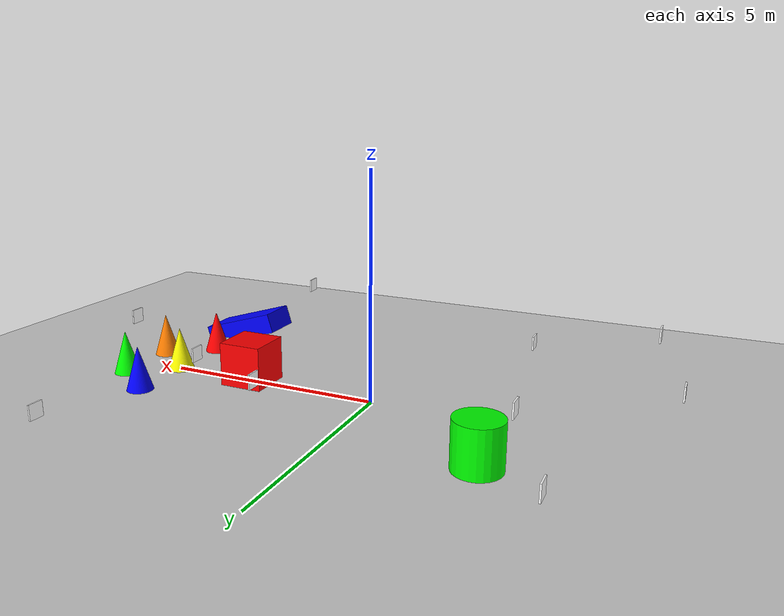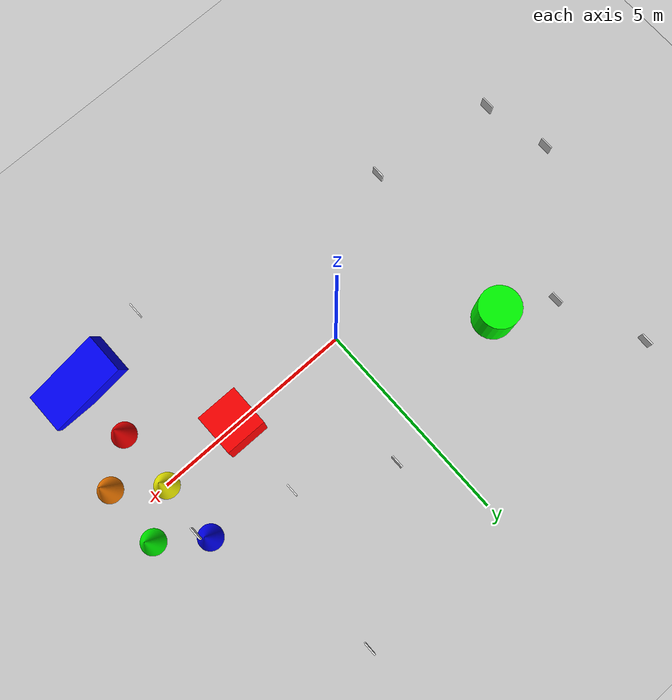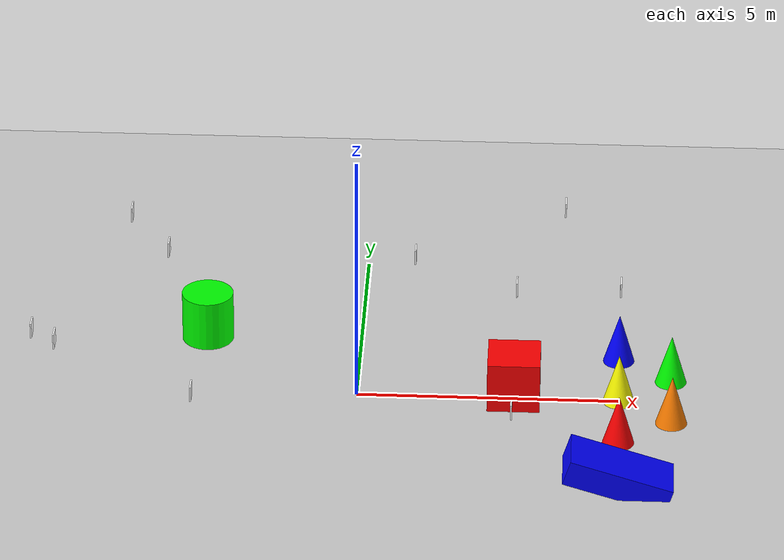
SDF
<?xml version="1.0"?>
<sdf version="1.8">
    <world name="my_robot_world">

        <!-- Physics Engine -->
        <physics name="1ms" type="ode">
            <max_step_size>0.001</max_step_size>
            <real_time_factor>1.0</real_time_factor>
            <real_time_update_rate>1000</real_time_update_rate>
        </physics>

        <!-- Required Plugins -->
        <plugin filename="libignition-gazebo-physics-system.so"
                name="ignition::gazebo::systems::Physics"/>
        <plugin filename="libignition-gazebo-user-commands-system.so"
                name="ignition::gazebo::systems::UserCommands"/>
        <plugin filename="libignition-gazebo-scene-broadcaster-system.so"
                name="ignition::gazebo::systems::SceneBroadcaster"/>
        <plugin filename="libignition-gazebo-sensors-system.so"
                name="ignition::gazebo::systems::Sensors">
            <render_engine>ogre2</render_engine>
        </plugin>

        <!-- Sunlight -->
        <light type="directional" name="sun">
            <cast_shadows>true</cast_shadows>
            <pose>0 0 10 0 0 0</pose>
            <diffuse>0.8 0.8 0.8 1</diffuse>
            <specular>0.2 0.2 0.2 1</specular>
            <direction>-0.5 0.1 -0.9</direction>
	    <attenuation>
		<range>1000</range>
                <constant>0.9</constant>
                <linear>0.01</linear>
                <quadratic>0.001</quadratic>
            </attenuation>
        </light>

        <!-- Ground Plane -->
        <model name="ground_plane">
            <static>true</static>
            <link name="link">
                <collision name="collision">
                    <geometry>
                        <plane>
                            <normal>0 0 1</normal>
                        </plane>
                    </geometry>
                </collision>
                <visual name="visual">
                    <geometry>
                        <plane>
                            <normal>0 0 1</normal>
                            <size>100 100</size>
                        </plane>
                    </geometry>
                    <material>
                <ambient>0.8 0.8 0.8 1</ambient>
                        <diffuse>0.8 0.8 0.8 1</diffuse>
                    </material>
        </visual>
            </link>
        </model>

        <!-- Custom Object 1 - A Box obstacle -->
        <model name="box_obstacle">
            <static>true</static>
            <pose>3 0 0.5 0 0 0</pose>
            <link name="link">
                <collision name="collision">
                    <geometry>
                        <box><size>1 1 1</size></box>
                    </geometry>
                </collision>
                <visual name="visual">
                    <geometry>
                        <box><size>1 1 1</size></box>
                    </geometry>
                    <material>
                <ambient>1 0 0 1</ambient>
                        <diffuse>1 0 0 1</diffuse>
                    </material>
        </visual>
            </link>
        </model>

        <!-- Custom Object 2 - A cylinder -->
        <model name="cylinder_obstacle">
            <static>true</static>
            <pose>-3 2 0.5 0 0 0</pose>
            <link name="link">
                <collision name="collision">
                    <geometry>
                        <cylinder>
                            <radius>0.5</radius>
                            <length>1.0</length>
                        </cylinder>
                    </geometry>
                </collision>
                <visual name="visual">
                    <geometry>
                        <cylinder>
                            <radius>0.5</radius>
                            <length>1.0</length>
                        </cylinder>
                    </geometry>
                    <material>
                <ambient>0 1 0 1</ambient>
                        <diffuse>0 1 0 1</diffuse>
                    </material>
        </visual>
            </link>
        </model>

        <!-- Custom Object 3 - A ramp -->
        <model name="ramp">
            <static>true</static>
            <pose>5 -3 0.25 0 0.3 0</pose>
            <link name="link">
                <collision name="collision">
                    <geometry>
                        <box><size>2 1 0.5</size></box>
                    </geometry>
                </collision>
                <visual name="visual">
                    <geometry>
                        <box><size>2 1 0.5</size></box>
                    </geometry>
                    <material>
                <ambient>0 0 1 1</ambient>
                        <diffuse>0 0 1 1</diffuse>
                    </material>
        </visual>
            </link>
        </model>

        <model name="aruco_marker_0">
            <static>true</static>
            <pose>3 2 1.3 0 0 0</pose>
            <link name="link">
                <visual name="visual">
                    <geometry>
                        <box><size>0.03 0.3 0.3</size></box>
                    </geometry>
                    <material>
                        <diffuse>1 1 1 1</diffuse>
                        <pbr>
                            <metal>
                                <albedo_map>../aruco_markers/aruco_marker_images/marker_0.png</albedo_map>
                            </metal>
                        </pbr>
                    </material>
        </visual>
                <collision name="collision">
                    <geometry>
                        <box><size>0.03 0.3 0.3</size></box>
                    </geometry>
                </collision>
            </link>
        </model>

        <model name="aruco_marker_1">
            <static>true</static>
            <pose>1 3 1.4 0 0 0</pose>
            <link name="link">
                <visual name="visual">
                    <geometry>
                        <box><size>0.03 0.3 0.3</size></box>
                    </geometry>
                    <material>
                        <diffuse>1 1 1 1</diffuse>
                        <pbr>
                            <metal>
                                <albedo_map>../aruco_markers/aruco_marker_images/marker_1.png</albedo_map>
                            </metal>
                        </pbr>
                    </material>
        </visual>
                <collision name="collision">
                    <geometry>
                        <box><size>0.03 0.3 0.3</size></box>
                    </geometry>
                </collision>
            </link>
        </model>

        <model name="aruco_marker_2">
            <static>true</static>
            <pose>3 -3 1.6 0 0 0</pose>
            <link name="link">
                <visual name="visual">
                    <geometry>
                        <box><size>0.03 0.3 0.3</size></box>
                    </geometry>
                    <material>
                        <diffuse>1 1 1 1</diffuse>
                        <pbr>
                            <metal>
                                <albedo_map>../aruco_markers/aruco_marker_images/marker_2.png</albedo_map>
                            </metal>
                        </pbr>
                    </material>
        </visual>
                <collision name="collision">
                    <geometry>
                        <box><size>0.03 0.3 0.3</size></box>
                    </geometry>
                </collision>
            </link>
        </model>

        <model name="aruco_marker_3">
            <static>true</static>
            <pose>-3 -2 1.2 0 0 0</pose>
            <link name="link">
                <visual name="visual">
                    <geometry>
                        <box><size>0.03 0.3 0.3</size></box>
                    </geometry>
                    <material>
                        <diffuse>1 1 1 1</diffuse>
                        <pbr>
                            <metal>
                                <albedo_map>../aruco_markers/aruco_marker_images/marker_3.png</albedo_map>
                            </metal>
                        </pbr>
                    </material>
        </visual>
                <collision name="collision">
                    <geometry>
                        <box><size>0.03 0.3 0.3</size></box>
                    </geometry>
                </collision>
            </link>
        </model>

        <model name="aruco_marker_4">
            <static>true</static>
            <pose>5 1.4 1.7 0 0 0</pose>
            <link name="link">
                <visual name="visual">
                    <geometry>
                        <box><size>0.03 0.3 0.3</size></box>
                    </geometry>
                    <material>
                        <diffuse>1 1 1 1</diffuse>
                        <pbr>
                            <metal>
                                <albedo_map>../aruco_markers/aruco_marker_images/marker_4.png</albedo_map>
                            </metal>
                        </pbr>
                    </material>
        </visual>
                <collision name="collision">
                    <geometry>
                        <box><size>0.03 0.3 0.3</size></box>
                    </geometry>
                </collision>
            </link>
        </model>

        <model name="aruco_marker_5">
            <static>true</static>
            <pose>3.9 5.4 1.2 0 0 0</pose>
            <link name="link">
                <visual name="visual">
                    <geometry>
                        <box><size>0.03 0.3 0.3</size></box>
                    </geometry>
                    <material>
                        <diffuse>1 1 1 1</diffuse>
                        <pbr>
                            <metal>
                                <albedo_map>../aruco_markers/aruco_marker_images/marker_5.png</albedo_map>
                            </metal>
                        </pbr>
                    </material>
        </visual>
                <collision name="collision">
                    <geometry>
                        <box><size>0.03 0.3 0.3</size></box>
                    </geometry>
                </collision>
            </link>
        </model>

        <model name="aruco_marker_6">
            <static>true</static>
            <pose>-5.6 -1.4 1.9 0 0 0</pose>
            <link name="link">
                <visual name="visual">
                    <geometry>
                        <box><size>0.03 0.3 0.3</size></box>
                    </geometry>
                    <material>
                        <diffuse>1 1 1 1</diffuse>
                        <pbr>
                            <metal>
                                <albedo_map>../aruco_markers/aruco_marker_images/marker_6.png</albedo_map>
                            </metal>
                        </pbr>
                    </material>
        </visual>
                <collision name="collision">
                    <geometry>
                        <box><size>0.03 0.3 0.3</size></box>
                    </geometry>
                </collision>
            </link>
        </model>

        <model name="aruco_marker_7">
            <static>true</static>
            <pose>-3.8 2.7 1.6 0 0 0</pose>
            <link name="link">
                <visual name="visual">
                    <geometry>
                        <box><size>0.03 0.3 0.3</size></box>
                    </geometry>
                    <material>
                        <diffuse>1 1 1 1</diffuse>
                        <pbr>
                            <metal>
                                <albedo_map>../aruco_markers/aruco_marker_images/marker_7.png</albedo_map>
                            </metal>
                        </pbr>
                    </material>
        </visual>
                <collision name="collision">
                    <geometry>
                        <box><size>0.03 0.3 0.3</size></box>
                    </geometry>
                </collision>
            </link>
        </model>

        <model name="aruco_marker_8">
            <static>true</static>
            <pose>-4.7 4.6 1.3 0 0 0</pose>
            <link name="link">
                <visual name="visual">
                    <geometry>
                        <box><size>0.03 0.3 0.3</size></box>
                    </geometry>
                    <material>
                        <diffuse>1 1 1 1</diffuse>
                        <pbr>
                            <metal>
                                <albedo_map>../aruco_markers/aruco_marker_images/marker_8.png</albedo_map>
                            </metal>
                        </pbr>
                    </material>
        </visual>
                <collision name="collision">
                    <geometry>
                        <box><size>0.03 0.3 0.3</size></box>
                    </geometry>
                </collision>
            </link>
        </model>

        <model name="aruco_marker_9">
            <static>true</static>
            <pose>-6.2 0 1.3 0 0 0</pose>
            <link name="link">
                <visual name="visual">
                    <geometry>
                        <box><size>0.03 0.3 0.3</size></box>
                    </geometry>
                    <material>
                        <diffuse>1 1 1 1</diffuse>
                        <pbr>
                            <metal>
                                <albedo_map>../aruco_markers/aruco_marker_images/marker_9.png</albedo_map>
                            </metal>
                        </pbr>
                    </material>
        </visual>
                <collision name="collision">
                    <geometry>
                        <box><size>0.03 0.3 0.3</size></box>
                    </geometry>
                </collision>
            </link>
        </model>

<!-- Traffic cones for YOLO detection training and inference -->
<model name="cone_red">
    <static>true</static>
    <pose>5.0 -1.5 0 0 0 0</pose>
    <link name="link">
        <visual name="visual">
            <geometry>
                <mesh>
                    <uri>assets/cone_red.obj</uri>
                    <scale>0.03 0.03 0.03333</scale>
                </mesh>
            </geometry>
            <material>
                <ambient>1 0 0 1</ambient>
                <diffuse>1 0 0 1</diffuse>
                <specular>0 0 0 1</specular>
                <emissive>0 0 0 1</emissive>
            </material>
        </visual>
        <collision name="collision">
            <pose>0 0 0.5 0 0 0</pose>
            <geometry>
                <cylinder>
                    <radius>0.3</radius>
                    <length>1.0</length>
                </cylinder>
            </geometry>
        </collision>
    </link>
</model>

<model name="cone_yellow">
    <static>true</static>
    <pose>5.0 0.0 0 0 0 0.785</pose>
    <link name="link">
        <visual name="visual">
            <geometry>
                <mesh>
                    <uri>assets/cone_yellow.obj</uri>
                    <scale>0.03 0.03 0.03333</scale>
                </mesh>
            </geometry>
            <material>
                <ambient>1 1 0 1</ambient>
                <diffuse>1 1 0 1</diffuse>
                <specular>0 0 0 1</specular>
                <emissive>0 0 0 1</emissive>
            </material>
        </visual>
        <collision name="collision">
            <pose>0 0 0.5 0 0 0</pose>
            <geometry>
                <cylinder>
                    <radius>0.3</radius>
                    <length>1.0</length>
                </cylinder>
            </geometry>
        </collision>
    </link>
</model>

<model name="cone_blue">
    <static>true</static>
    <pose>5.0 1.5 0 0 0 1.571</pose>
    <link name="link">
        <visual name="visual">
            <geometry>
                <mesh>
                    <uri>assets/cone_blue.obj</uri>
                    <scale>0.03 0.03 0.03333</scale>
                </mesh>
            </geometry>
            <material>
                <ambient>0 0 1 1</ambient>
                <diffuse>0 0 1 1</diffuse>
                <specular>0 0 0 1</specular>
                <emissive>0 0 0 1</emissive>
            </material>
        </visual>
        <collision name="collision">
            <pose>0 0 0.5 0 0 0</pose>
            <geometry>
                <cylinder>
                    <radius>0.3</radius>
                    <length>1.0</length>
                </cylinder>
            </geometry>
        </collision>
    </link>
</model>

<model name="cone_orange">
    <static>true</static>
    <pose>6.0 -0.75 0 0 0 -0.785</pose>
    <link name="link">
        <visual name="visual">
            <geometry>
                <mesh>
                    <uri>assets/cone_orange.obj</uri>
                    <scale>0.03 0.03 0.03333</scale>
                </mesh>
            </geometry>
            <material>
                <ambient>1 0.5 0 1</ambient>
                <diffuse>1 0.5 0 1</diffuse>
                <specular>0 0 0 1</specular>
                <emissive>0 0 0 1</emissive>
            </material>
        </visual>
        <collision name="collision">
            <pose>0 0 0.5 0 0 0</pose>
            <geometry>
                <cylinder>
                    <radius>0.3</radius>
                    <length>1.0</length>
                </cylinder>
            </geometry>
        </collision>
    </link>
</model>

<model name="cone_green">
    <static>true</static>
    <pose>6.0 0.75 0 0 0 3.14</pose>
    <link name="link">
        <visual name="visual">
            <geometry>
                <mesh>
                    <uri>assets/cone_green.obj</uri>
                    <scale>0.03 0.03 0.03333</scale>
                </mesh>
            </geometry>
            <material>
                <ambient>0 1 0 1</ambient>
                <diffuse>0 1 0 1</diffuse>
                <specular>0 0 0 1</specular>
                <emissive>0 0 0 1</emissive>
            </material>
        </visual>
        <collision name="collision">
            <pose>0 0 0.5 0 0 0</pose>
            <geometry>
                <cylinder>
                    <radius>0.3</radius>
                    <length>1.0</length>
                </cylinder>
            </geometry>
        </collision>
    </link>
</model>

    </world>
</sdf>
